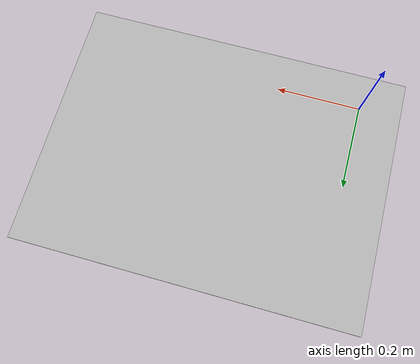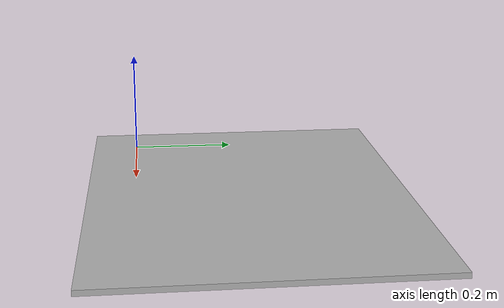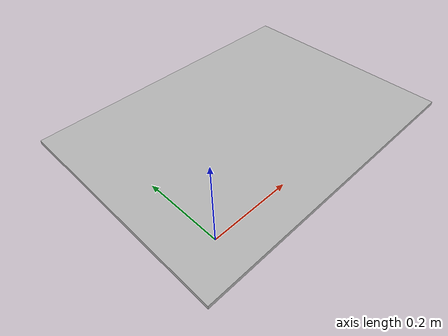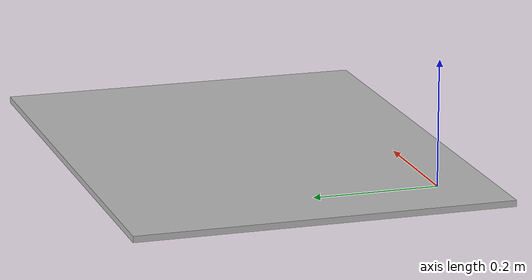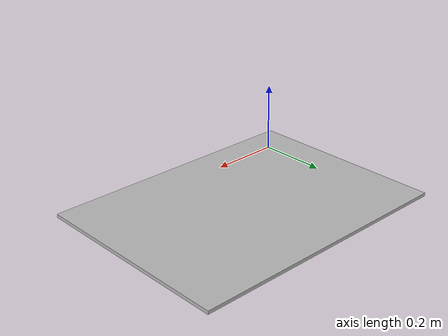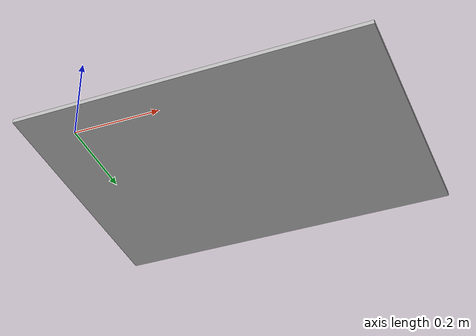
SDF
<?xml version="1.0"?>
<sdf version="1.4">
  <model name="charuco_800x600">
    <static>1</static>
    <link name="charuco">
      <pose>0 0 0 0 0 0</pose>
      <visual name="charuco_800x600">
        <geometry>
          <mesh>
            <uri>model://charuco_800x600/charuco_800x600.dae</uri>
          </mesh>
        </geometry>
      </visual>
      <collision name="charuco_800x600">
        <geometry>
          <mesh>
            <uri>model://charuco_800x600/charuco_800x600.dae</uri>
          </mesh>
        </geometry>
      </collision>
    </link>
  </model>
</sdf>
